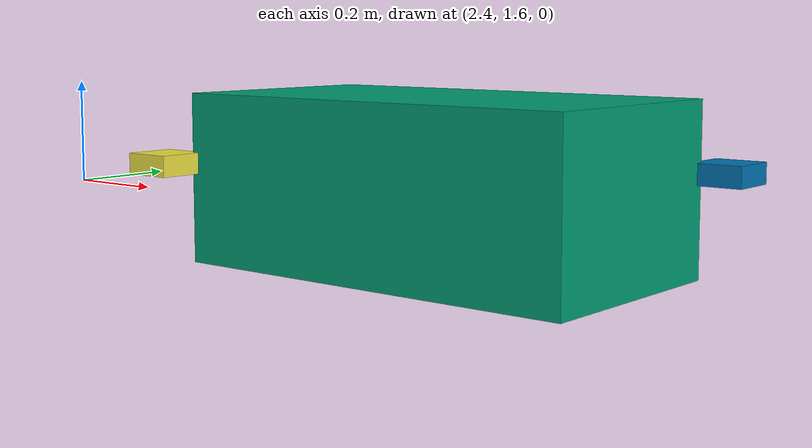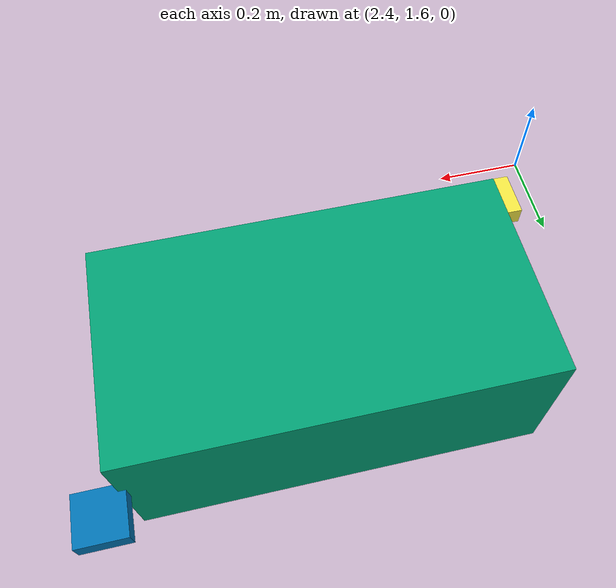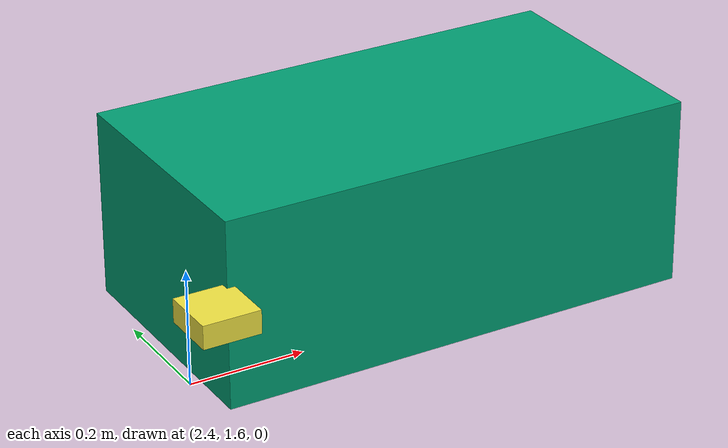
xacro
<?xml version="1.0" ?>
<robot name="robot" xmlns:xacro="http://ros.org/wiki/xacro">

  	<link name="map">
 	</link>

     <joint name="odom_joint" type="fixed">
        <origin xyz="1.5 1.0 0" rpy="0 0 0"/>
        <parent link="map"/>
        <child link="odom"/>
    </joint>

 	<link name="odom">
 	</link>

     <joint name="base_joint" type="fixed">
        <origin xyz="1.5 1.0 0" rpy="0 0 0"/>
        <parent link="odom"/>
        <child link="base_link"/>
    </joint>

  <link name="base_link">
    <visual>
      <geometry>
        <box size="0.9 0.48 0.35"/>
      </geometry>
    </visual>
    <collision>
      <geometry>
        <box size="0.9 0.48 0.35"/>
      </geometry>
    </collision>

    <inertial>
      <origin xyz="0 0 0" />
      <mass value="10.0" />
      <inertia ixx="0.83333" ixy="0.0" ixz="0.0"
              iyy="1.9333" iyz="0.0"
              izz="2.1667" />
    </inertial>

  </link>

<link name="Lidar_front">
	    <inertial>
      <origin
        xyz="-0.065971 -0.034453 0.00052875"
        rpy="0 0 0" />
      <mass
        value="0.029663" />
      <inertia
        ixx="2.3758E-05"
        ixy="0"
        ixz="0"
        iyy="2.3758E-05"
        iyz="0"
        izz="4.7471E-05" />
    </inertial>
	    <visual>
	      <geometry>
		<box size="0.106 0.106 0.0435"/>
	      </geometry>
	    </visual>
	    <collision>
	      <geometry>
		<box size="0.106 0.106 0.0435"/>
	      </geometry>
	    </collision>
	  </link>

	  <joint name="Lidar_front_joint" type="fixed">
	    <axis xyz="0 0 1"/>
	    <parent link="base_link"/>
	    <child link="Lidar_front"/>
	    <origin rpy="0 0 3.14" xyz="-0.488 -0.278 0.0315"/>
	  </joint>

<link name="Lidar_rear">
	    <inertial>
      <origin
        xyz="-0.065971 -0.034453 0.00052875"
        rpy="0 0 0" />
      <mass
        value="0.029663" />
      <inertia
        ixx="2.3758E-05"
        ixy="0"
        ixz="0"
        iyy="2.3758E-05"
        iyz="0"
        izz="4.7471E-05" />
    </inertial>
	    <visual>
	      <geometry>
		<box size="0.106 0.106 0.0435"/>
	      </geometry>
	    </visual>
	    <collision>
	      <geometry>
		<box size="0.106 0.106 0.0435"/>
	      </geometry>
	    </collision>
	  </link>

	  <joint name="Lidar_rear_joint" type="fixed">
	    <axis xyz="0 0 1"/>
	    <parent link="base_link"/>
	    <child link="Lidar_rear"/>
	    <origin rpy="0 0 0" xyz="0.488 0.278 0.0315"/>
	  </joint>

</robot>
